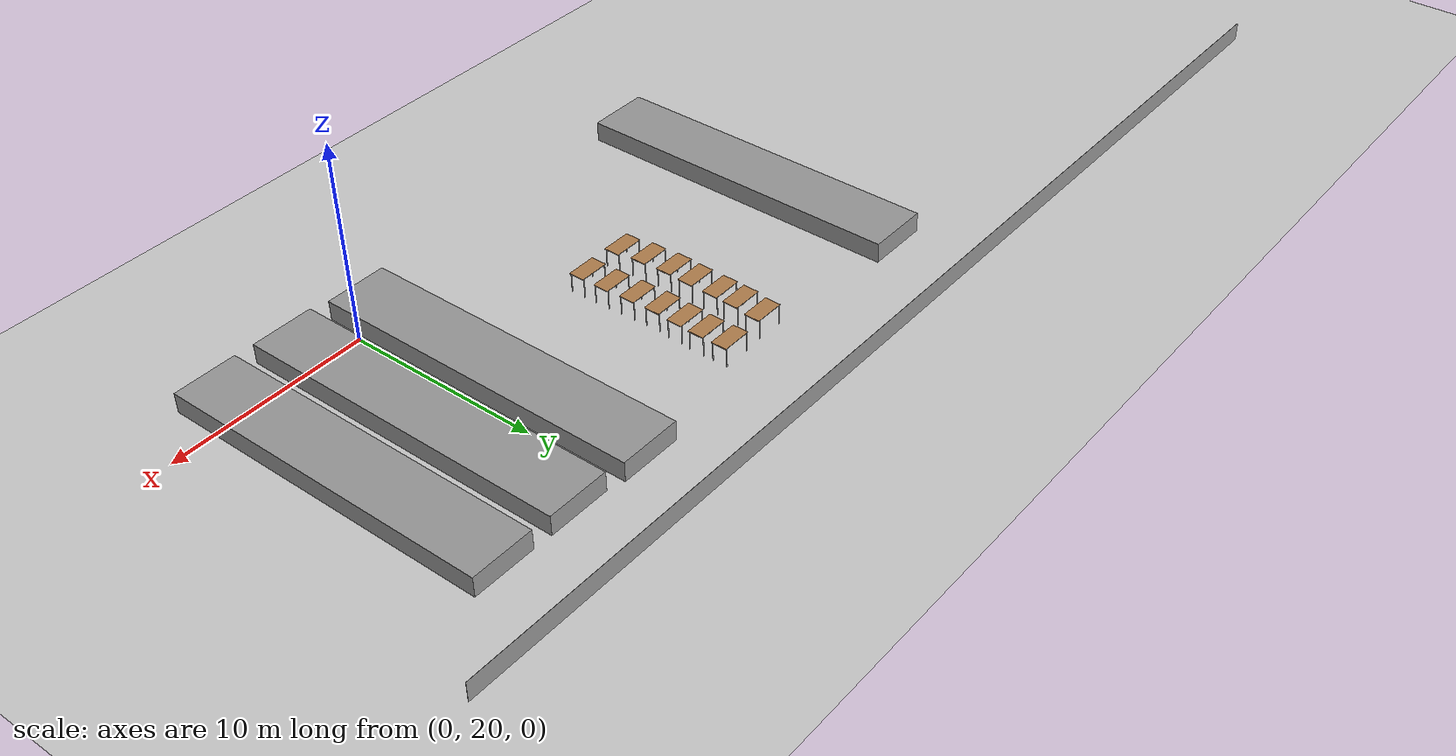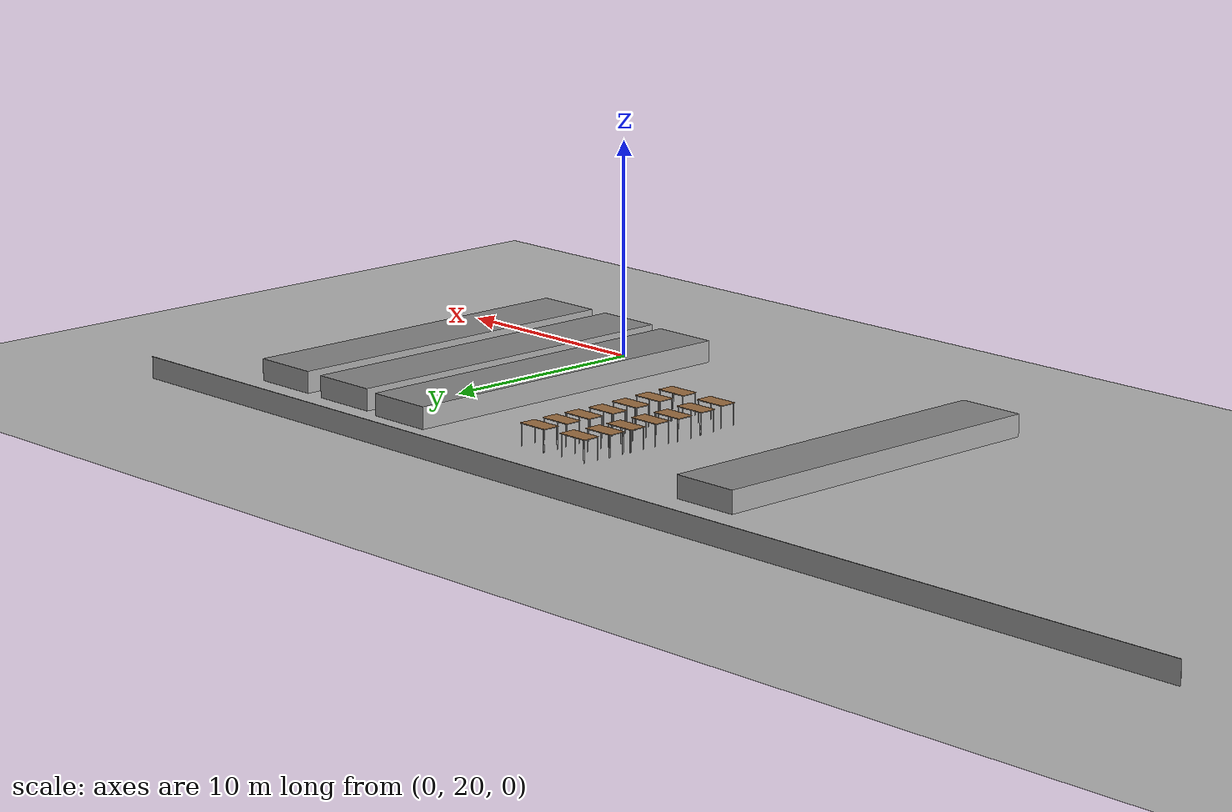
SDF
<sdf version="1.6">
 <world name="default">
  <model name="ground_plane">
   <static>1</static>
   <link name="link">
    <collision name="collision">
     <geometry><plane><normal>0 0 1</normal><size>100 100</size></plane></geometry>
     <surface>
      <contact><collide_bitmask>65535</collide_bitmask></contact>
      <friction><ode><mu>100</mu><mu2>50</mu2></ode></friction>
     </surface>
    </collision>
    <visual name="visual">
     <cast_shadows>0</cast_shadows>
     <geometry><plane><normal>0 0 1</normal><size>100 100</size></plane></geometry>
     <material>
      <script><uri>file://media/materials/scripts/gazebo.material</uri><name>Gazebo/Grey</name></script>
     </material>
    </visual>
   </link>
  </model>
  <model name="unit_box_clone_clone_clone_0">
   <static>1</static>
   <pose>-17.768 38.0386 0.5 0 -0 0</pose>
   <link name="link">
    <inertial>
     <mass>1</mass>
     <inertia>
      <ixx>0.166667</ixx>
      <ixy>0</ixy>
      <ixz>0</ixz>
      <iyy>0.166667</iyy>
      <iyz>0</iyz>
      <izz>0.166667</izz>
     </inertia>
    </inertial>
    <collision name="collision"><geometry><box><size>58.500 0.014042 1</size></box></geometry></collision>
    <visual name="visual">
     <geometry><box><size>58.50 0.014042 1</size></box></geometry>
     <material>
      <script><name>Gazebo/Grey</name><uri>file://media/materials/scripts/gazebo.material</uri></script>
     </material>
    </visual>
   </link>
  </model>
  <model name="unit_box_1">
   <static>1</static>
   <pose>6.23605 26.1762 0.5 0 -0 0</pose>
   <link name="link">
    <inertial>
     <mass>1</mass>
     <inertia>
      <ixx>0.166667</ixx>
      <ixy>0</ixy>
      <ixz>0</ixz>
      <iyy>0.166667</iyy>
      <iyz>0</iyz>
      <izz>0.166667</izz>
     </inertia>
    </inertial>
    <collision name="collision"><geometry><box><size>3.13881 17.0566 1</size></box></geometry></collision>
    <visual name="visual">
     <geometry><box><size>3.13881 17.0566 1</size></box></geometry>
     <material>
      <script><name>Gazebo/Grey</name><uri>file://media/materials/scripts/gazebo.material</uri></script>
     </material>
    </visual>
   </link>
  </model>
  <model name="unit_box_1_clone">
   <static>1</static>
   <pose>2.1598 26.2237 0.5 0 -0 0</pose>
   <link name="link">
    <inertial>
     <mass>1</mass>
     <inertia>
      <ixx>0.166667</ixx>
      <ixy>0</ixy>
      <ixz>0</ixz>
      <iyy>0.166667</iyy>
      <iyz>0</iyz>
      <izz>0.166667</izz>
     </inertia>
    </inertial>
    <collision name="collision"><geometry><box><size>3.13881 17.0566 1</size></box></geometry></collision>
    <visual name="visual">
     <geometry><box><size>3.13881 17.0566 1</size></box></geometry>
     <material>
      <script><name>Gazebo/Grey</name><uri>file://media/materials/scripts/gazebo.material</uri></script>
     </material>
    </visual>
   </link>
  </model>
  <model name="unit_box_1_clone_0">
   <static>1</static>
   <pose>-1.81086 26.4592 0.5 0 -0 0</pose>
   <link name="link">
    <inertial>
     <mass>1</mass>
     <inertia>
      <ixx>0.166667</ixx>
      <ixy>0</ixy>
      <ixz>0</ixz>
      <iyy>0.166667</iyy>
      <iyz>0</iyz>
      <izz>0.166667</izz>
     </inertia>
    </inertial>
    <collision name="collision"><geometry><box><size>3.13881 17.0566 1</size></box></geometry></collision>
    <visual name="visual">
     <geometry><box><size>3.13881 17.0566 1</size></box></geometry>
     <material>
      <script><name>Gazebo/Grey</name><uri>file://media/materials/scripts/gazebo.material</uri></script>
     </material>
    </visual>
   </link>
  </model>
  <model name="table">
   <static>1</static>
   <link name="link">
    <collision name="surface">
     <pose>0 0 1 0 -0 0</pose>
     <geometry><box><size>1.5 0.8 0.03</size></box></geometry>
     <surface><friction><ode><mu>0.6</mu><mu2>0.6</mu2></ode></friction></surface>
    </collision>
    <visual name="visual1">
     <pose>0 0 1 0 -0 0</pose>
     <geometry><box><size>1.5 0.8 0.03</size></box></geometry>
     <material>
      <script><uri>file://media/materials/scripts/gazebo.material</uri><name>Gazebo/Wood</name></script>
     </material>
    </visual>
    <collision name="front_left_leg">
     <pose>0.68 0.38 0.5 0 -0 0</pose>
     <geometry><cylinder><radius>0.02</radius><length>1</length></cylinder></geometry>
    </collision>
    <visual name="front_left_leg">
     <pose>0.68 0.38 0.5 0 -0 0</pose>
     <geometry><cylinder><radius>0.02</radius><length>1</length></cylinder></geometry>
     <material>
      <script><uri>file://media/materials/scripts/gazebo.material</uri><name>Gazebo/Grey</name></script>
     </material>
    </visual>
    <collision name="front_right_leg">
     <pose>0.68 -0.38 0.5 0 -0 0</pose>
     <geometry><cylinder><radius>0.02</radius><length>1</length></cylinder></geometry>
    </collision>
    <visual name="front_right_leg">
     <pose>0.68 -0.38 0.5 0 -0 0</pose>
     <geometry><cylinder><radius>0.02</radius><length>1</length></cylinder></geometry>
     <material>
      <script><uri>file://media/materials/scripts/gazebo.material</uri><name>Gazebo/Grey</name></script>
     </material>
    </visual>
    <collision name="back_right_leg">
     <pose>-0.68 -0.38 0.5 0 -0 0</pose>
     <geometry><cylinder><radius>0.02</radius><length>1</length></cylinder></geometry>
    </collision>
    <visual name="back_right_leg">
     <pose>-0.68 -0.38 0.5 0 -0 0</pose>
     <geometry><cylinder><radius>0.02</radius><length>1</length></cylinder></geometry>
     <material>
      <script><uri>file://media/materials/scripts/gazebo.material</uri><name>Gazebo/Grey</name></script>
     </material>
    </visual>
    <collision name="back_left_leg">
     <pose>-0.68 0.38 0.5 0 -0 0</pose>
     <geometry><cylinder><radius>0.02</radius><length>1</length></cylinder></geometry>
    </collision>
    <visual name="back_left_leg">
     <pose>-0.68 0.38 0.5 0 -0 0</pose>
     <geometry><cylinder><radius>0.02</radius><length>1</length></cylinder></geometry>
     <material>
      <script><uri>file://media/materials/scripts/gazebo.material</uri><name>Gazebo/Grey</name></script>
     </material>
    </visual>
   </link>
   <pose>-8.91221 33.3255 0 0 -0 0</pose>
  </model>
  <model name="table_clone">
   <static>1</static>
   <link name="link">
    <collision name="surface">
     <pose>0 0 1 0 -0 0</pose>
     <geometry><box><size>1.5 0.8 0.03</size></box></geometry>
     <surface><friction><ode><mu>0.6</mu><mu2>0.6</mu2></ode></friction></surface>
    </collision>
    <visual name="visual1">
     <pose>0 0 1 0 -0 0</pose>
     <geometry><box><size>1.5 0.8 0.03</size></box></geometry>
     <material>
      <script><uri>file://media/materials/scripts/gazebo.material</uri><name>Gazebo/Wood</name></script>
     </material>
    </visual>
    <collision name="front_left_leg">
     <pose>0.68 0.38 0.5 0 -0 0</pose>
     <geometry><cylinder><radius>0.02</radius><length>1</length></cylinder></geometry>
    </collision>
    <visual name="front_left_leg">
     <pose>0.68 0.38 0.5 0 -0 0</pose>
     <geometry><cylinder><radius>0.02</radius><length>1</length></cylinder></geometry>
     <material>
      <script><uri>file://media/materials/scripts/gazebo.material</uri><name>Gazebo/Grey</name></script>
     </material>
    </visual>
    <collision name="front_right_leg">
     <pose>0.68 -0.38 0.5 0 -0 0</pose>
     <geometry><cylinder><radius>0.02</radius><length>1</length></cylinder></geometry>
    </collision>
    <visual name="front_right_leg">
     <pose>0.68 -0.38 0.5 0 -0 0</pose>
     <geometry><cylinder><radius>0.02</radius><length>1</length></cylinder></geometry>
     <material>
      <script><uri>file://media/materials/scripts/gazebo.material</uri><name>Gazebo/Grey</name></script>
     </material>
    </visual>
    <collision name="back_right_leg">
     <pose>-0.68 -0.38 0.5 0 -0 0</pose>
     <geometry><cylinder><radius>0.02</radius><length>1</length></cylinder></geometry>
    </collision>
    <visual name="back_right_leg">
     <pose>-0.68 -0.38 0.5 0 -0 0</pose>
     <geometry><cylinder><radius>0.02</radius><length>1</length></cylinder></geometry>
     <material>
      <script><uri>file://media/materials/scripts/gazebo.material</uri><name>Gazebo/Grey</name></script>
     </material>
    </visual>
    <collision name="back_left_leg">
     <pose>-0.68 0.38 0.5 0 -0 0</pose>
     <geometry><cylinder><radius>0.02</radius><length>1</length></cylinder></geometry>
    </collision>
    <visual name="back_left_leg">
     <pose>-0.68 0.38 0.5 0 -0 0</pose>
     <geometry><cylinder><radius>0.02</radius><length>1</length></cylinder></geometry>
     <material>
      <script><uri>file://media/materials/scripts/gazebo.material</uri><name>Gazebo/Grey</name></script>
     </material>
    </visual>
   </link>
   <pose>-8.90459 32.058 0 0 -0 0</pose>
  </model>
  <model name="table_clone_0">
   <static>1</static>
   <link name="link">
    <collision name="surface">
     <pose>0 0 1 0 -0 0</pose>
     <geometry><box><size>1.5 0.8 0.03</size></box></geometry>
     <surface><friction><ode><mu>0.6</mu><mu2>0.6</mu2></ode></friction></surface>
    </collision>
    <visual name="visual1">
     <pose>0 0 1 0 -0 0</pose>
     <geometry><box><size>1.5 0.8 0.03</size></box></geometry>
     <material>
      <script><uri>file://media/materials/scripts/gazebo.material</uri><name>Gazebo/Wood</name></script>
     </material>
    </visual>
    <collision name="front_left_leg">
     <pose>0.68 0.38 0.5 0 -0 0</pose>
     <geometry><cylinder><radius>0.02</radius><length>1</length></cylinder></geometry>
    </collision>
    <visual name="front_left_leg">
     <pose>0.68 0.38 0.5 0 -0 0</pose>
     <geometry><cylinder><radius>0.02</radius><length>1</length></cylinder></geometry>
     <material>
      <script><uri>file://media/materials/scripts/gazebo.material</uri><name>Gazebo/Grey</name></script>
     </material>
    </visual>
    <collision name="front_right_leg">
     <pose>0.68 -0.38 0.5 0 -0 0</pose>
     <geometry><cylinder><radius>0.02</radius><length>1</length></cylinder></geometry>
    </collision>
    <visual name="front_right_leg">
     <pose>0.68 -0.38 0.5 0 -0 0</pose>
     <geometry><cylinder><radius>0.02</radius><length>1</length></cylinder></geometry>
     <material>
      <script><uri>file://media/materials/scripts/gazebo.material</uri><name>Gazebo/Grey</name></script>
     </material>
    </visual>
    <collision name="back_right_leg">
     <pose>-0.68 -0.38 0.5 0 -0 0</pose>
     <geometry><cylinder><radius>0.02</radius><length>1</length></cylinder></geometry>
    </collision>
    <visual name="back_right_leg">
     <pose>-0.68 -0.38 0.5 0 -0 0</pose>
     <geometry><cylinder><radius>0.02</radius><length>1</length></cylinder></geometry>
     <material>
      <script><uri>file://media/materials/scripts/gazebo.material</uri><name>Gazebo/Grey</name></script>
     </material>
    </visual>
    <collision name="back_left_leg">
     <pose>-0.68 0.38 0.5 0 -0 0</pose>
     <geometry><cylinder><radius>0.02</radius><length>1</length></cylinder></geometry>
    </collision>
    <visual name="back_left_leg">
     <pose>-0.68 0.38 0.5 0 -0 0</pose>
     <geometry><cylinder><radius>0.02</radius><length>1</length></cylinder></geometry>
     <material>
      <script><uri>file://media/materials/scripts/gazebo.material</uri><name>Gazebo/Grey</name></script>
     </material>
    </visual>
   </link>
   <pose>-8.95181 30.8273 0 0 -0 0</pose>
  </model>
  <model name="table_clone_1">
   <static>1</static>
   <link name="link">
    <collision name="surface">
     <pose>0 0 1 0 -0 0</pose>
     <geometry><box><size>1.5 0.8 0.03</size></box></geometry>
     <surface><friction><ode><mu>0.6</mu><mu2>0.6</mu2></ode></friction></surface>
    </collision>
    <visual name="visual1">
     <pose>0 0 1 0 -0 0</pose>
     <geometry><box><size>1.5 0.8 0.03</size></box></geometry>
     <material>
      <script><uri>file://media/materials/scripts/gazebo.material</uri><name>Gazebo/Wood</name></script>
     </material>
    </visual>
    <collision name="front_left_leg">
     <pose>0.68 0.38 0.5 0 -0 0</pose>
     <geometry><cylinder><radius>0.02</radius><length>1</length></cylinder></geometry>
    </collision>
    <visual name="front_left_leg">
     <pose>0.68 0.38 0.5 0 -0 0</pose>
     <geometry><cylinder><radius>0.02</radius><length>1</length></cylinder></geometry>
     <material>
      <script><uri>file://media/materials/scripts/gazebo.material</uri><name>Gazebo/Grey</name></script>
     </material>
    </visual>
    <collision name="front_right_leg">
     <pose>0.68 -0.38 0.5 0 -0 0</pose>
     <geometry><cylinder><radius>0.02</radius><length>1</length></cylinder></geometry>
    </collision>
    <visual name="front_right_leg">
     <pose>0.68 -0.38 0.5 0 -0 0</pose>
     <geometry><cylinder><radius>0.02</radius><length>1</length></cylinder></geometry>
     <material>
      <script><uri>file://media/materials/scripts/gazebo.material</uri><name>Gazebo/Grey</name></script>
     </material>
    </visual>
    <collision name="back_right_leg">
     <pose>-0.68 -0.38 0.5 0 -0 0</pose>
     <geometry><cylinder><radius>0.02</radius><length>1</length></cylinder></geometry>
    </collision>
    <visual name="back_right_leg">
     <pose>-0.68 -0.38 0.5 0 -0 0</pose>
     <geometry><cylinder><radius>0.02</radius><length>1</length></cylinder></geometry>
     <material>
      <script><uri>file://media/materials/scripts/gazebo.material</uri><name>Gazebo/Grey</name></script>
     </material>
    </visual>
    <collision name="back_left_leg">
     <pose>-0.68 0.38 0.5 0 -0 0</pose>
     <geometry><cylinder><radius>0.02</radius><length>1</length></cylinder></geometry>
    </collision>
    <visual name="back_left_leg">
     <pose>-0.68 0.38 0.5 0 -0 0</pose>
     <geometry><cylinder><radius>0.02</radius><length>1</length></cylinder></geometry>
     <material>
      <script><uri>file://media/materials/scripts/gazebo.material</uri><name>Gazebo/Grey</name></script>
     </material>
    </visual>
   </link>
   <pose>-9.02005 29.5143 0 0 -0 0</pose>
  </model>
  <model name="table_clone_2">
   <static>1</static>
   <link name="link">
    <collision name="surface">
     <pose>0 0 1 0 -0 0</pose>
     <geometry><box><size>1.5 0.8 0.03</size></box></geometry>
     <surface><friction><ode><mu>0.6</mu><mu2>0.6</mu2></ode></friction></surface>
    </collision>
    <visual name="visual1">
     <pose>0 0 1 0 -0 0</pose>
     <geometry><box><size>1.5 0.8 0.03</size></box></geometry>
     <material>
      <script><uri>file://media/materials/scripts/gazebo.material</uri><name>Gazebo/Wood</name></script>
     </material>
    </visual>
    <collision name="front_left_leg">
     <pose>0.68 0.38 0.5 0 -0 0</pose>
     <geometry><cylinder><radius>0.02</radius><length>1</length></cylinder></geometry>
    </collision>
    <visual name="front_left_leg">
     <pose>0.68 0.38 0.5 0 -0 0</pose>
     <geometry><cylinder><radius>0.02</radius><length>1</length></cylinder></geometry>
     <material>
      <script><uri>file://media/materials/scripts/gazebo.material</uri><name>Gazebo/Grey</name></script>
     </material>
    </visual>
    <collision name="front_right_leg">
     <pose>0.68 -0.38 0.5 0 -0 0</pose>
     <geometry><cylinder><radius>0.02</radius><length>1</length></cylinder></geometry>
    </collision>
    <visual name="front_right_leg">
     <pose>0.68 -0.38 0.5 0 -0 0</pose>
     <geometry><cylinder><radius>0.02</radius><length>1</length></cylinder></geometry>
     <material>
      <script><uri>file://media/materials/scripts/gazebo.material</uri><name>Gazebo/Grey</name></script>
     </material>
    </visual>
    <collision name="back_right_leg">
     <pose>-0.68 -0.38 0.5 0 -0 0</pose>
     <geometry><cylinder><radius>0.02</radius><length>1</length></cylinder></geometry>
    </collision>
    <visual name="back_right_leg">
     <pose>-0.68 -0.38 0.5 0 -0 0</pose>
     <geometry><cylinder><radius>0.02</radius><length>1</length></cylinder></geometry>
     <material>
      <script><uri>file://media/materials/scripts/gazebo.material</uri><name>Gazebo/Grey</name></script>
     </material>
    </visual>
    <collision name="back_left_leg">
     <pose>-0.68 0.38 0.5 0 -0 0</pose>
     <geometry><cylinder><radius>0.02</radius><length>1</length></cylinder></geometry>
    </collision>
    <visual name="back_left_leg">
     <pose>-0.68 0.38 0.5 0 -0 0</pose>
     <geometry><cylinder><radius>0.02</radius><length>1</length></cylinder></geometry>
     <material>
      <script><uri>file://media/materials/scripts/gazebo.material</uri><name>Gazebo/Grey</name></script>
     </material>
    </visual>
   </link>
   <pose>-8.97467 28.1137 0 0 -0 0</pose>
  </model>
  <model name="table_clone_3">
   <static>1</static>
   <link name="link">
    <collision name="surface">
     <pose>0 0 1 0 -0 0</pose>
     <geometry><box><size>1.5 0.8 0.03</size></box></geometry>
     <surface><friction><ode><mu>0.6</mu><mu2>0.6</mu2></ode></friction></surface>
    </collision>
    <visual name="visual1">
     <pose>0 0 1 0 -0 0</pose>
     <geometry><box><size>1.5 0.8 0.03</size></box></geometry>
     <material>
      <script><uri>file://media/materials/scripts/gazebo.material</uri><name>Gazebo/Wood</name></script>
     </material>
    </visual>
    <collision name="front_left_leg">
     <pose>0.68 0.38 0.5 0 -0 0</pose>
     <geometry><cylinder><radius>0.02</radius><length>1</length></cylinder></geometry>
    </collision>
    <visual name="front_left_leg">
     <pose>0.68 0.38 0.5 0 -0 0</pose>
     <geometry><cylinder><radius>0.02</radius><length>1</length></cylinder></geometry>
     <material>
      <script><uri>file://media/materials/scripts/gazebo.material</uri><name>Gazebo/Grey</name></script>
     </material>
    </visual>
    <collision name="front_right_leg">
     <pose>0.68 -0.38 0.5 0 -0 0</pose>
     <geometry><cylinder><radius>0.02</radius><length>1</length></cylinder></geometry>
    </collision>
    <visual name="front_right_leg">
     <pose>0.68 -0.38 0.5 0 -0 0</pose>
     <geometry><cylinder><radius>0.02</radius><length>1</length></cylinder></geometry>
     <material>
      <script><uri>file://media/materials/scripts/gazebo.material</uri><name>Gazebo/Grey</name></script>
     </material>
    </visual>
    <collision name="back_right_leg">
     <pose>-0.68 -0.38 0.5 0 -0 0</pose>
     <geometry><cylinder><radius>0.02</radius><length>1</length></cylinder></geometry>
    </collision>
    <visual name="back_right_leg">
     <pose>-0.68 -0.38 0.5 0 -0 0</pose>
     <geometry><cylinder><radius>0.02</radius><length>1</length></cylinder></geometry>
     <material>
      <script><uri>file://media/materials/scripts/gazebo.material</uri><name>Gazebo/Grey</name></script>
     </material>
    </visual>
    <collision name="back_left_leg">
     <pose>-0.68 0.38 0.5 0 -0 0</pose>
     <geometry><cylinder><radius>0.02</radius><length>1</length></cylinder></geometry>
    </collision>
    <visual name="back_left_leg">
     <pose>-0.68 0.38 0.5 0 -0 0</pose>
     <geometry><cylinder><radius>0.02</radius><length>1</length></cylinder></geometry>
     <material>
      <script><uri>file://media/materials/scripts/gazebo.material</uri><name>Gazebo/Grey</name></script>
     </material>
    </visual>
   </link>
   <pose>-8.90071 26.6793 0 0 -0 0</pose>
  </model>
  <model name="table_clone_4">
   <static>1</static>
   <link name="link">
    <collision name="surface">
     <pose>0 0 1 0 -0 0</pose>
     <geometry><box><size>1.5 0.8 0.03</size></box></geometry>
     <surface><friction><ode><mu>0.6</mu><mu2>0.6</mu2></ode></friction></surface>
    </collision>
    <visual name="visual1">
     <pose>0 0 1 0 -0 0</pose>
     <geometry><box><size>1.5 0.8 0.03</size></box></geometry>
     <material>
      <script><uri>file://media/materials/scripts/gazebo.material</uri><name>Gazebo/Wood</name></script>
     </material>
    </visual>
    <collision name="front_left_leg">
     <pose>0.68 0.38 0.5 0 -0 0</pose>
     <geometry><cylinder><radius>0.02</radius><length>1</length></cylinder></geometry>
    </collision>
    <visual name="front_left_leg">
     <pose>0.68 0.38 0.5 0 -0 0</pose>
     <geometry><cylinder><radius>0.02</radius><length>1</length></cylinder></geometry>
     <material>
      <script><uri>file://media/materials/scripts/gazebo.material</uri><name>Gazebo/Grey</name></script>
     </material>
    </visual>
    <collision name="front_right_leg">
     <pose>0.68 -0.38 0.5 0 -0 0</pose>
     <geometry><cylinder><radius>0.02</radius><length>1</length></cylinder></geometry>
    </collision>
    <visual name="front_right_leg">
     <pose>0.68 -0.38 0.5 0 -0 0</pose>
     <geometry><cylinder><radius>0.02</radius><length>1</length></cylinder></geometry>
     <material>
      <script><uri>file://media/materials/scripts/gazebo.material</uri><name>Gazebo/Grey</name></script>
     </material>
    </visual>
    <collision name="back_right_leg">
     <pose>-0.68 -0.38 0.5 0 -0 0</pose>
     <geometry><cylinder><radius>0.02</radius><length>1</length></cylinder></geometry>
    </collision>
    <visual name="back_right_leg">
     <pose>-0.68 -0.38 0.5 0 -0 0</pose>
     <geometry><cylinder><radius>0.02</radius><length>1</length></cylinder></geometry>
     <material>
      <script><uri>file://media/materials/scripts/gazebo.material</uri><name>Gazebo/Grey</name></script>
     </material>
    </visual>
    <collision name="back_left_leg">
     <pose>-0.68 0.38 0.5 0 -0 0</pose>
     <geometry><cylinder><radius>0.02</radius><length>1</length></cylinder></geometry>
    </collision>
    <visual name="back_left_leg">
     <pose>-0.68 0.38 0.5 0 -0 0</pose>
     <geometry><cylinder><radius>0.02</radius><length>1</length></cylinder></geometry>
     <material>
      <script><uri>file://media/materials/scripts/gazebo.material</uri><name>Gazebo/Grey</name></script>
     </material>
    </visual>
   </link>
   <pose>-8.8937 25.2616 0 0 -0 0</pose>
  </model>
  <model name="table_clone_9">
   <static>1</static>
   <link name="link">
    <collision name="surface">
     <pose>0 0 1 0 -0 0</pose>
     <geometry><box><size>1.5 0.8 0.03</size></box></geometry>
     <surface><friction><ode><mu>0.6</mu><mu2>0.6</mu2></ode></friction></surface>
    </collision>
    <visual name="visual1">
     <pose>0 0 1 0 -0 0</pose>
     <geometry><box><size>1.5 0.8 0.03</size></box></geometry>
     <material>
      <script><uri>file://media/materials/scripts/gazebo.material</uri><name>Gazebo/Wood</name></script>
     </material>
    </visual>
    <collision name="front_left_leg">
     <pose>0.68 0.38 0.5 0 -0 0</pose>
     <geometry><cylinder><radius>0.02</radius><length>1</length></cylinder></geometry>
    </collision>
    <visual name="front_left_leg">
     <pose>0.68 0.38 0.5 0 -0 0</pose>
     <geometry><cylinder><radius>0.02</radius><length>1</length></cylinder></geometry>
     <material>
      <script><uri>file://media/materials/scripts/gazebo.material</uri><name>Gazebo/Grey</name></script>
     </material>
    </visual>
    <collision name="front_right_leg">
     <pose>0.68 -0.38 0.5 0 -0 0</pose>
     <geometry><cylinder><radius>0.02</radius><length>1</length></cylinder></geometry>
    </collision>
    <visual name="front_right_leg">
     <pose>0.68 -0.38 0.5 0 -0 0</pose>
     <geometry><cylinder><radius>0.02</radius><length>1</length></cylinder></geometry>
     <material>
      <script><uri>file://media/materials/scripts/gazebo.material</uri><name>Gazebo/Grey</name></script>
     </material>
    </visual>
    <collision name="back_right_leg">
     <pose>-0.68 -0.38 0.5 0 -0 0</pose>
     <geometry><cylinder><radius>0.02</radius><length>1</length></cylinder></geometry>
    </collision>
    <visual name="back_right_leg">
     <pose>-0.68 -0.38 0.5 0 -0 0</pose>
     <geometry><cylinder><radius>0.02</radius><length>1</length></cylinder></geometry>
     <material>
      <script><uri>file://media/materials/scripts/gazebo.material</uri><name>Gazebo/Grey</name></script>
     </material>
    </visual>
    <collision name="back_left_leg">
     <pose>-0.68 0.38 0.5 0 -0 0</pose>
     <geometry><cylinder><radius>0.02</radius><length>1</length></cylinder></geometry>
    </collision>
    <visual name="back_left_leg">
     <pose>-0.68 0.38 0.5 0 -0 0</pose>
     <geometry><cylinder><radius>0.02</radius><length>1</length></cylinder></geometry>
     <material>
      <script><uri>file://media/materials/scripts/gazebo.material</uri><name>Gazebo/Grey</name></script>
     </material>
    </visual>
   </link>
   <pose>-11.2767 33.2418 0 0 -0 0</pose>
  </model>
  <model name="table_clone_10">
   <static>1</static>
   <link name="link">
    <collision name="surface">
     <pose>0 0 1 0 -0 0</pose>
     <geometry><box><size>1.5 0.8 0.03</size></box></geometry>
     <surface><friction><ode><mu>0.6</mu><mu2>0.6</mu2></ode></friction></surface>
    </collision>
    <visual name="visual1">
     <pose>0 0 1 0 -0 0</pose>
     <geometry><box><size>1.5 0.8 0.03</size></box></geometry>
     <material>
      <script><uri>file://media/materials/scripts/gazebo.material</uri><name>Gazebo/Wood</name></script>
     </material>
    </visual>
    <collision name="front_left_leg">
     <pose>0.68 0.38 0.5 0 -0 0</pose>
     <geometry><cylinder><radius>0.02</radius><length>1</length></cylinder></geometry>
    </collision>
    <visual name="front_left_leg">
     <pose>0.68 0.38 0.5 0 -0 0</pose>
     <geometry><cylinder><radius>0.02</radius><length>1</length></cylinder></geometry>
     <material>
      <script><uri>file://media/materials/scripts/gazebo.material</uri><name>Gazebo/Grey</name></script>
     </material>
    </visual>
    <collision name="front_right_leg">
     <pose>0.68 -0.38 0.5 0 -0 0</pose>
     <geometry><cylinder><radius>0.02</radius><length>1</length></cylinder></geometry>
    </collision>
    <visual name="front_right_leg">
     <pose>0.68 -0.38 0.5 0 -0 0</pose>
     <geometry><cylinder><radius>0.02</radius><length>1</length></cylinder></geometry>
     <material>
      <script><uri>file://media/materials/scripts/gazebo.material</uri><name>Gazebo/Grey</name></script>
     </material>
    </visual>
    <collision name="back_right_leg">
     <pose>-0.68 -0.38 0.5 0 -0 0</pose>
     <geometry><cylinder><radius>0.02</radius><length>1</length></cylinder></geometry>
    </collision>
    <visual name="back_right_leg">
     <pose>-0.68 -0.38 0.5 0 -0 0</pose>
     <geometry><cylinder><radius>0.02</radius><length>1</length></cylinder></geometry>
     <material>
      <script><uri>file://media/materials/scripts/gazebo.material</uri><name>Gazebo/Grey</name></script>
     </material>
    </visual>
    <collision name="back_left_leg">
     <pose>-0.68 0.38 0.5 0 -0 0</pose>
     <geometry><cylinder><radius>0.02</radius><length>1</length></cylinder></geometry>
    </collision>
    <visual name="back_left_leg">
     <pose>-0.68 0.38 0.5 0 -0 0</pose>
     <geometry><cylinder><radius>0.02</radius><length>1</length></cylinder></geometry>
     <material>
      <script><uri>file://media/materials/scripts/gazebo.material</uri><name>Gazebo/Grey</name></script>
     </material>
    </visual>
   </link>
   <pose>-11.4236 31.9233 0 0 -0 0</pose>
  </model>
  <model name="table_clone_11">
   <static>1</static>
   <link name="link">
    <collision name="surface">
     <pose>0 0 1 0 -0 0</pose>
     <geometry><box><size>1.5 0.8 0.03</size></box></geometry>
     <surface><friction><ode><mu>0.6</mu><mu2>0.6</mu2></ode></friction></surface>
    </collision>
    <visual name="visual1">
     <pose>0 0 1 0 -0 0</pose>
     <geometry><box><size>1.5 0.8 0.03</size></box></geometry>
     <material>
      <script><uri>file://media/materials/scripts/gazebo.material</uri><name>Gazebo/Wood</name></script>
     </material>
    </visual>
    <collision name="front_left_leg">
     <pose>0.68 0.38 0.5 0 -0 0</pose>
     <geometry><cylinder><radius>0.02</radius><length>1</length></cylinder></geometry>
    </collision>
    <visual name="front_left_leg">
     <pose>0.68 0.38 0.5 0 -0 0</pose>
     <geometry><cylinder><radius>0.02</radius><length>1</length></cylinder></geometry>
     <material>
      <script><uri>file://media/materials/scripts/gazebo.material</uri><name>Gazebo/Grey</name></script>
     </material>
    </visual>
    <collision name="front_right_leg">
     <pose>0.68 -0.38 0.5 0 -0 0</pose>
     <geometry><cylinder><radius>0.02</radius><length>1</length></cylinder></geometry>
    </collision>
    <visual name="front_right_leg">
     <pose>0.68 -0.38 0.5 0 -0 0</pose>
     <geometry><cylinder><radius>0.02</radius><length>1</length></cylinder></geometry>
     <material>
      <script><uri>file://media/materials/scripts/gazebo.material</uri><name>Gazebo/Grey</name></script>
     </material>
    </visual>
    <collision name="back_right_leg">
     <pose>-0.68 -0.38 0.5 0 -0 0</pose>
     <geometry><cylinder><radius>0.02</radius><length>1</length></cylinder></geometry>
    </collision>
    <visual name="back_right_leg">
     <pose>-0.68 -0.38 0.5 0 -0 0</pose>
     <geometry><cylinder><radius>0.02</radius><length>1</length></cylinder></geometry>
     <material>
      <script><uri>file://media/materials/scripts/gazebo.material</uri><name>Gazebo/Grey</name></script>
     </material>
    </visual>
    <collision name="back_left_leg">
     <pose>-0.68 0.38 0.5 0 -0 0</pose>
     <geometry><cylinder><radius>0.02</radius><length>1</length></cylinder></geometry>
    </collision>
    <visual name="back_left_leg">
     <pose>-0.68 0.38 0.5 0 -0 0</pose>
     <geometry><cylinder><radius>0.02</radius><length>1</length></cylinder></geometry>
     <material>
      <script><uri>file://media/materials/scripts/gazebo.material</uri><name>Gazebo/Grey</name></script>
     </material>
    </visual>
   </link>
   <pose>-11.4516 30.7586 0 0 -0 0</pose>
  </model>
  <model name="table_clone_12">
   <static>1</static>
   <link name="link">
    <collision name="surface">
     <pose>0 0 1 0 -0 0</pose>
     <geometry><box><size>1.5 0.8 0.03</size></box></geometry>
     <surface><friction><ode><mu>0.6</mu><mu2>0.6</mu2></ode></friction></surface>
    </collision>
    <visual name="visual1">
     <pose>0 0 1 0 -0 0</pose>
     <geometry><box><size>1.5 0.8 0.03</size></box></geometry>
     <material>
      <script><uri>file://media/materials/scripts/gazebo.material</uri><name>Gazebo/Wood</name></script>
     </material>
    </visual>
    <collision name="front_left_leg">
     <pose>0.68 0.38 0.5 0 -0 0</pose>
     <geometry><cylinder><radius>0.02</radius><length>1</length></cylinder></geometry>
    </collision>
    <visual name="front_left_leg">
     <pose>0.68 0.38 0.5 0 -0 0</pose>
     <geometry><cylinder><radius>0.02</radius><length>1</length></cylinder></geometry>
     <material>
      <script><uri>file://media/materials/scripts/gazebo.material</uri><name>Gazebo/Grey</name></script>
     </material>
    </visual>
    <collision name="front_right_leg">
     <pose>0.68 -0.38 0.5 0 -0 0</pose>
     <geometry><cylinder><radius>0.02</radius><length>1</length></cylinder></geometry>
    </collision>
    <visual name="front_right_leg">
     <pose>0.68 -0.38 0.5 0 -0 0</pose>
     <geometry><cylinder><radius>0.02</radius><length>1</length></cylinder></geometry>
     <material>
      <script><uri>file://media/materials/scripts/gazebo.material</uri><name>Gazebo/Grey</name></script>
     </material>
    </visual>
    <collision name="back_right_leg">
     <pose>-0.68 -0.38 0.5 0 -0 0</pose>
     <geometry><cylinder><radius>0.02</radius><length>1</length></cylinder></geometry>
    </collision>
    <visual name="back_right_leg">
     <pose>-0.68 -0.38 0.5 0 -0 0</pose>
     <geometry><cylinder><radius>0.02</radius><length>1</length></cylinder></geometry>
     <material>
      <script><uri>file://media/materials/scripts/gazebo.material</uri><name>Gazebo/Grey</name></script>
     </material>
    </visual>
    <collision name="back_left_leg">
     <pose>-0.68 0.38 0.5 0 -0 0</pose>
     <geometry><cylinder><radius>0.02</radius><length>1</length></cylinder></geometry>
    </collision>
    <visual name="back_left_leg">
     <pose>-0.68 0.38 0.5 0 -0 0</pose>
     <geometry><cylinder><radius>0.02</radius><length>1</length></cylinder></geometry>
     <material>
      <script><uri>file://media/materials/scripts/gazebo.material</uri><name>Gazebo/Grey</name></script>
     </material>
    </visual>
   </link>
   <pose>-11.4633 29.346 0 0 -0 0</pose>
  </model>
  <model name="table_clone_13">
   <static>1</static>
   <link name="link">
    <collision name="surface">
     <pose>0 0 1 0 -0 0</pose>
     <geometry><box><size>1.5 0.8 0.03</size></box></geometry>
     <surface><friction><ode><mu>0.6</mu><mu2>0.6</mu2></ode></friction></surface>
    </collision>
    <visual name="visual1">
     <pose>0 0 1 0 -0 0</pose>
     <geometry><box><size>1.5 0.8 0.03</size></box></geometry>
     <material>
      <script><uri>file://media/materials/scripts/gazebo.material</uri><name>Gazebo/Wood</name></script>
     </material>
    </visual>
    <collision name="front_left_leg">
     <pose>0.68 0.38 0.5 0 -0 0</pose>
     <geometry><cylinder><radius>0.02</radius><length>1</length></cylinder></geometry>
    </collision>
    <visual name="front_left_leg">
     <pose>0.68 0.38 0.5 0 -0 0</pose>
     <geometry><cylinder><radius>0.02</radius><length>1</length></cylinder></geometry>
     <material>
      <script><uri>file://media/materials/scripts/gazebo.material</uri><name>Gazebo/Grey</name></script>
     </material>
    </visual>
    <collision name="front_right_leg">
     <pose>0.68 -0.38 0.5 0 -0 0</pose>
     <geometry><cylinder><radius>0.02</radius><length>1</length></cylinder></geometry>
    </collision>
    <visual name="front_right_leg">
     <pose>0.68 -0.38 0.5 0 -0 0</pose>
     <geometry><cylinder><radius>0.02</radius><length>1</length></cylinder></geometry>
     <material>
      <script><uri>file://media/materials/scripts/gazebo.material</uri><name>Gazebo/Grey</name></script>
     </material>
    </visual>
    <collision name="back_right_leg">
     <pose>-0.68 -0.38 0.5 0 -0 0</pose>
     <geometry><cylinder><radius>0.02</radius><length>1</length></cylinder></geometry>
    </collision>
    <visual name="back_right_leg">
     <pose>-0.68 -0.38 0.5 0 -0 0</pose>
     <geometry><cylinder><radius>0.02</radius><length>1</length></cylinder></geometry>
     <material>
      <script><uri>file://media/materials/scripts/gazebo.material</uri><name>Gazebo/Grey</name></script>
     </material>
    </visual>
    <collision name="back_left_leg">
     <pose>-0.68 0.38 0.5 0 -0 0</pose>
     <geometry><cylinder><radius>0.02</radius><length>1</length></cylinder></geometry>
    </collision>
    <visual name="back_left_leg">
     <pose>-0.68 0.38 0.5 0 -0 0</pose>
     <geometry><cylinder><radius>0.02</radius><length>1</length></cylinder></geometry>
     <material>
      <script><uri>file://media/materials/scripts/gazebo.material</uri><name>Gazebo/Grey</name></script>
     </material>
    </visual>
   </link>
   <pose>-11.5117 28.0664 0 0 -0 0</pose>
  </model>
  <model name="table_clone_14">
   <static>1</static>
   <link name="link">
    <collision name="surface">
     <pose>0 0 1 0 -0 0</pose>
     <geometry><box><size>1.5 0.8 0.03</size></box></geometry>
     <surface><friction><ode><mu>0.6</mu><mu2>0.6</mu2></ode></friction></surface>
    </collision>
    <visual name="visual1">
     <pose>0 0 1 0 -0 0</pose>
     <geometry><box><size>1.5 0.8 0.03</size></box></geometry>
     <material>
      <script><uri>file://media/materials/scripts/gazebo.material</uri><name>Gazebo/Wood</name></script>
     </material>
    </visual>
    <collision name="front_left_leg">
     <pose>0.68 0.38 0.5 0 -0 0</pose>
     <geometry><cylinder><radius>0.02</radius><length>1</length></cylinder></geometry>
    </collision>
    <visual name="front_left_leg">
     <pose>0.68 0.38 0.5 0 -0 0</pose>
     <geometry><cylinder><radius>0.02</radius><length>1</length></cylinder></geometry>
     <material>
      <script><uri>file://media/materials/scripts/gazebo.material</uri><name>Gazebo/Grey</name></script>
     </material>
    </visual>
    <collision name="front_right_leg">
     <pose>0.68 -0.38 0.5 0 -0 0</pose>
     <geometry><cylinder><radius>0.02</radius><length>1</length></cylinder></geometry>
    </collision>
    <visual name="front_right_leg">
     <pose>0.68 -0.38 0.5 0 -0 0</pose>
     <geometry><cylinder><radius>0.02</radius><length>1</length></cylinder></geometry>
     <material>
      <script><uri>file://media/materials/scripts/gazebo.material</uri><name>Gazebo/Grey</name></script>
     </material>
    </visual>
    <collision name="back_right_leg">
     <pose>-0.68 -0.38 0.5 0 -0 0</pose>
     <geometry><cylinder><radius>0.02</radius><length>1</length></cylinder></geometry>
    </collision>
    <visual name="back_right_leg">
     <pose>-0.68 -0.38 0.5 0 -0 0</pose>
     <geometry><cylinder><radius>0.02</radius><length>1</length></cylinder></geometry>
     <material>
      <script><uri>file://media/materials/scripts/gazebo.material</uri><name>Gazebo/Grey</name></script>
     </material>
    </visual>
    <collision name="back_left_leg">
     <pose>-0.68 0.38 0.5 0 -0 0</pose>
     <geometry><cylinder><radius>0.02</radius><length>1</length></cylinder></geometry>
    </collision>
    <visual name="back_left_leg">
     <pose>-0.68 0.38 0.5 0 -0 0</pose>
     <geometry><cylinder><radius>0.02</radius><length>1</length></cylinder></geometry>
     <material>
      <script><uri>file://media/materials/scripts/gazebo.material</uri><name>Gazebo/Grey</name></script>
     </material>
    </visual>
   </link>
   <pose>-11.4269 26.6505 0 0 -0 0</pose>
  </model>
  <model name="table_clone_15">
   <static>1</static>
   <link name="link">
    <collision name="surface">
     <pose>0 0 1 0 -0 0</pose>
     <geometry><box><size>1.5 0.8 0.03</size></box></geometry>
     <surface><friction><ode><mu>0.6</mu><mu2>0.6</mu2></ode></friction></surface>
    </collision>
    <visual name="visual1">
     <pose>0 0 1 0 -0 0</pose>
     <geometry><box><size>1.5 0.8 0.03</size></box></geometry>
     <material>
      <script><uri>file://media/materials/scripts/gazebo.material</uri><name>Gazebo/Wood</name></script>
     </material>
    </visual>
    <collision name="front_left_leg">
     <pose>0.68 0.38 0.5 0 -0 0</pose>
     <geometry><cylinder><radius>0.02</radius><length>1</length></cylinder></geometry>
    </collision>
    <visual name="front_left_leg">
     <pose>0.68 0.38 0.5 0 -0 0</pose>
     <geometry><cylinder><radius>0.02</radius><length>1</length></cylinder></geometry>
     <material>
      <script><uri>file://media/materials/scripts/gazebo.material</uri><name>Gazebo/Grey</name></script>
     </material>
    </visual>
    <collision name="front_right_leg">
     <pose>0.68 -0.38 0.5 0 -0 0</pose>
     <geometry><cylinder><radius>0.02</radius><length>1</length></cylinder></geometry>
    </collision>
    <visual name="front_right_leg">
     <pose>0.68 -0.38 0.5 0 -0 0</pose>
     <geometry><cylinder><radius>0.02</radius><length>1</length></cylinder></geometry>
     <material>
      <script><uri>file://media/materials/scripts/gazebo.material</uri><name>Gazebo/Grey</name></script>
     </material>
    </visual>
    <collision name="back_right_leg">
     <pose>-0.68 -0.38 0.5 0 -0 0</pose>
     <geometry><cylinder><radius>0.02</radius><length>1</length></cylinder></geometry>
    </collision>
    <visual name="back_right_leg">
     <pose>-0.68 -0.38 0.5 0 -0 0</pose>
     <geometry><cylinder><radius>0.02</radius><length>1</length></cylinder></geometry>
     <material>
      <script><uri>file://media/materials/scripts/gazebo.material</uri><name>Gazebo/Grey</name></script>
     </material>
    </visual>
    <collision name="back_left_leg">
     <pose>-0.68 0.38 0.5 0 -0 0</pose>
     <geometry><cylinder><radius>0.02</radius><length>1</length></cylinder></geometry>
    </collision>
    <visual name="back_left_leg">
     <pose>-0.68 0.38 0.5 0 -0 0</pose>
     <geometry><cylinder><radius>0.02</radius><length>1</length></cylinder></geometry>
     <material>
      <script><uri>file://media/materials/scripts/gazebo.material</uri><name>Gazebo/Grey</name></script>
     </material>
    </visual>
   </link>
   <pose>-11.2421 25.2536 0 0 -0 0</pose>
  </model>
  <model name="unit_box_1_clone_0_clone">
   <static>1</static>
   <pose>-19.8811 25.9197 0.5 0 -0 0</pose>
   <link name="link">
    <inertial>
     <mass>1</mass>
     <inertia>
      <ixx>0.166667</ixx>
      <ixy>0</ixy>
      <ixz>0</ixz>
      <iyy>0.166667</iyy>
      <iyz>0</iyz>
      <izz>0.166667</izz>
     </inertia>
    </inertial>
    <collision name="collision"><geometry><box><size>3.13881 17.0566 1</size></box></geometry></collision>
    <visual name="visual">
     <geometry><box><size>3.13881 17.0566 1</size></box></geometry>
     <material>
      <script><name>Gazebo/Grey</name><uri>file://media/materials/scripts/gazebo.material</uri></script>
     </material>
    </visual>
   </link>
  </model>
 </world>
</sdf>
